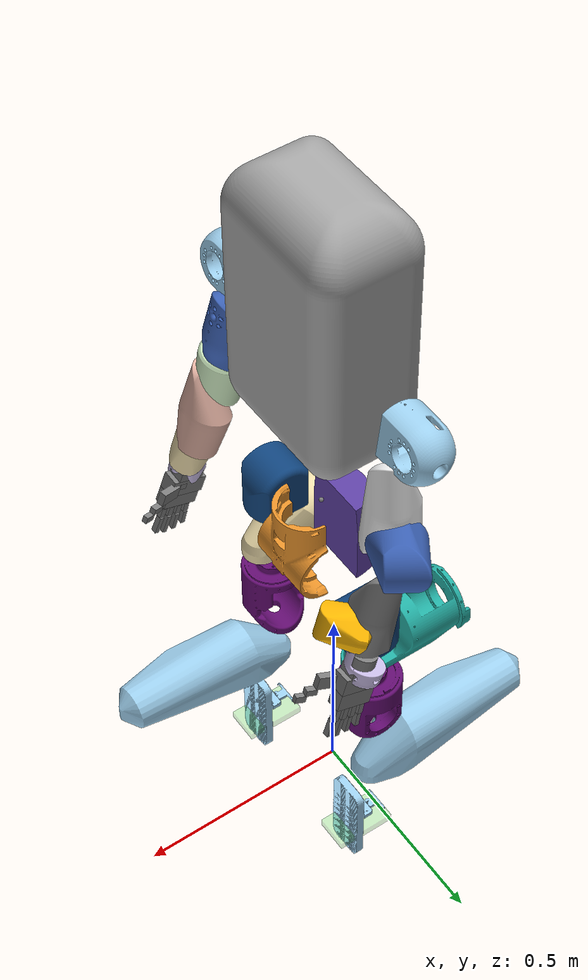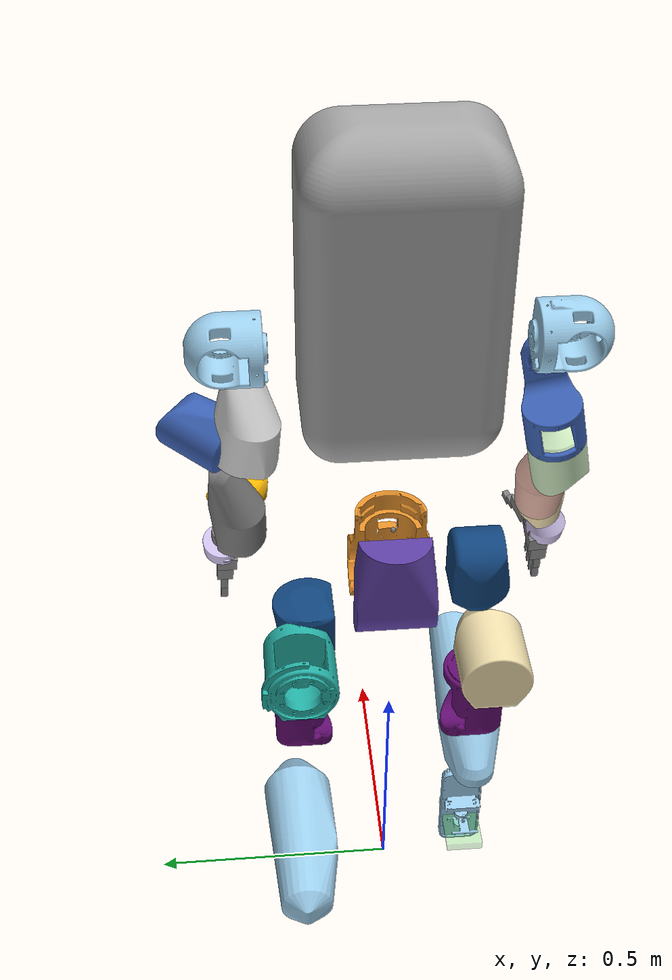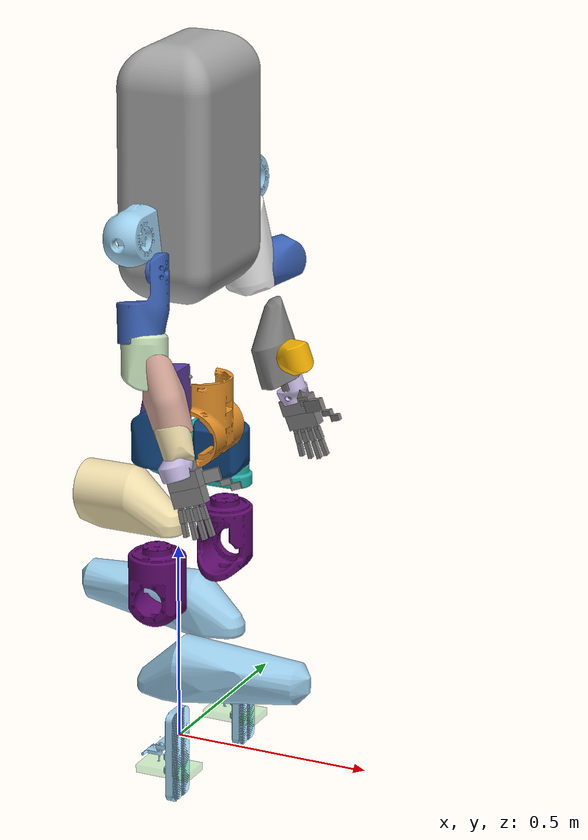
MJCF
<?xml version='1.0' encoding='utf-8'?>
<mujoco model="harambe_full_robot">
  <compiler angle="radian" />
  <asset>
    <mesh name="b_base" content_type="model/stl" file="/home/alex/Documents/GitHub/ldr-harambe-arms-sim2real/src/robot_description/full_robot_description/meshes/collision/b_base.stl" />
    <mesh name="f_base" content_type="model/stl" file="/home/alex/Documents/GitHub/ldr-harambe-arms-sim2real/src/robot_description/full_robot_description/meshes/visual/f_base.stl" />
    <mesh name="urdf_simplified_torso" content_type="model/stl" file="/home/alex/Documents/GitHub/ldr-harambe-arms-sim2real/src/robot_description/full_robot_description/meshes/collision/urdf_simplified_torso.stl" />
    <mesh name="head" content_type="model/stl" file="/home/alex/Documents/GitHub/ldr-harambe-arms-sim2real/src/robot_description/full_robot_description/meshes/visual/head.stl" />
    <mesh name="l_shoulder" content_type="model/stl" file="/home/alex/Documents/GitHub/ldr-harambe-arms-sim2real/src/robot_description/full_robot_description/meshes/visual/l_shoulder.stl" />
    <mesh name="urdf_l_upper_arm_simplified" content_type="model/stl" file="/home/alex/Documents/GitHub/ldr-harambe-arms-sim2real/src/robot_description/full_robot_description/meshes/collision/urdf_l_upper_arm_simplified.stl" />
    <mesh name="urdf_l_elbow_simplified" content_type="model/stl" file="/home/alex/Documents/GitHub/ldr-harambe-arms-sim2real/src/robot_description/full_robot_description/meshes/collision/urdf_l_elbow_simplified.stl" />
    <mesh name="urdf_l_upper_forearm_simplified" content_type="model/stl" file="/home/alex/Documents/GitHub/ldr-harambe-arms-sim2real/src/robot_description/full_robot_description/meshes/collision/urdf_l_upper_forearm_simplified.stl" />
    <mesh name="urdf_l_lower_forearm_simplified" content_type="model/stl" file="/home/alex/Documents/GitHub/ldr-harambe-arms-sim2real/src/robot_description/full_robot_description/meshes/collision/urdf_l_lower_forearm_simplified.stl" />
    <mesh name="l_wrist" content_type="model/stl" file="/home/alex/Documents/GitHub/ldr-harambe-arms-sim2real/src/robot_description/full_robot_description/meshes/visual/l_wrist.stl" />
    <mesh name="r_shoulder" content_type="model/stl" file="/home/alex/Documents/GitHub/ldr-harambe-arms-sim2real/src/robot_description/full_robot_description/meshes/visual/r_shoulder.stl" />
    <mesh name="r_upper_arm" content_type="model/stl" file="/home/alex/Documents/GitHub/ldr-harambe-arms-sim2real/src/robot_description/full_robot_description/meshes/visual/r_upper_arm.stl" />
    <mesh name="r_elbow" content_type="model/stl" file="/home/alex/Documents/GitHub/ldr-harambe-arms-sim2real/src/robot_description/full_robot_description/meshes/collision/r_elbow.stl" />
    <mesh name="r_upper_forearm" content_type="model/stl" file="/home/alex/Documents/GitHub/ldr-harambe-arms-sim2real/src/robot_description/full_robot_description/meshes/collision/r_upper_forearm.stl" />
    <mesh name="r_lower_forearm" content_type="model/stl" file="/home/alex/Documents/GitHub/ldr-harambe-arms-sim2real/src/robot_description/full_robot_description/meshes/collision/r_lower_forearm.stl" />
    <mesh name="r_wrist" content_type="model/stl" file="/home/alex/Documents/GitHub/ldr-harambe-arms-sim2real/src/robot_description/full_robot_description/meshes/collision/r_wrist.stl" />
    <mesh name="hip" content_type="model/stl" file="/home/alex/Documents/GitHub/ldr-harambe-arms-sim2real/src/robot_description/full_robot_description/meshes/collision/hip.stl" />
    <mesh name="l_upper_femur" content_type="model/stl" file="/home/alex/Documents/GitHub/ldr-harambe-arms-sim2real/src/robot_description/full_robot_description/meshes/visual/l_upper_femur.stl" />
    <mesh name="lower_femur" content_type="model/stl" file="/home/alex/Documents/GitHub/ldr-harambe-arms-sim2real/src/robot_description/full_robot_description/meshes/visual/lower_femur.stl" />
    <mesh name="urdf_l_tibia_assembly" content_type="model/stl" file="/home/alex/Documents/GitHub/ldr-harambe-arms-sim2real/src/robot_description/full_robot_description/meshes/collision/urdf_l_tibia_assembly.stl" />
    <mesh name="urdf_ankle_assembly" content_type="model/stl" file="/home/alex/Documents/GitHub/ldr-harambe-arms-sim2real/src/robot_description/full_robot_description/meshes/visual/urdf_ankle_assembly.stl" />
    <mesh name="urdf_foot_assembly" content_type="model/stl" file="/home/alex/Documents/GitHub/ldr-harambe-arms-sim2real/src/robot_description/full_robot_description/meshes/visual/urdf_foot_assembly.stl" />
    <mesh name="r_upper_femur" content_type="model/stl" file="/home/alex/Documents/GitHub/ldr-harambe-arms-sim2real/src/robot_description/full_robot_description/meshes/collision/r_upper_femur.stl" />
    <mesh name="urdf_r_tibia_assembly" content_type="model/stl" file="/home/alex/Documents/GitHub/ldr-harambe-arms-sim2real/src/robot_description/full_robot_description/meshes/collision/urdf_r_tibia_assembly.stl" />
    <mesh name="low_res_bno055_imu" content_type="model/stl" file="/home/alex/Documents/GitHub/ldr-harambe-arms-sim2real/src/robot_description/imu_description/meshes/low_res_bno055_imu.stl" />
  </asset>
  <worldbody>
    <body name="urdf_base" pos="0 0 1.24">
      <inertial pos="0.0334604 -0.000699269 -0.431702" mass="5.132" diaginertia="0.0288848 0.0213139 0.0155352" />
      <freejoint name="root" />
      <geom pos="-0.00271429 -0.000697952 -0.432504" quat="0.707105 0 0 -0.707108" type="mesh" rgba="0.368627 0.25098 0.643137 1" mesh="b_base" />
      <geom pos="0.070373 -0.000705351 -0.431099" quat="0.707105 0 0 -0.707108" type="mesh" rgba="0.909804 0.572549 0.164706 1" mesh="f_base" />
      <body name="urdf_simplified_torso" pos="0.0333787 -0.000698852 -0.300748">
        <inertial pos="0.00209319 -4.17161e-05 0.327223" quat="0.999959 0.000222179 0.00902524 -2.61918e-05" mass="5.90847" diaginertia="0.321445 0.295277 0.0774425" />
        <joint name="waist_yaw_joint_X8" pos="0 0 0" axis="0 0 1" range="-1.57 1.57" armature="0.01" damping="0.5" />
        <geom pos="0 0 0.26095" quat="0.707105 0 0 -0.707108" type="mesh" rgba="0.647059 0.647059 0.647059 1" mesh="urdf_simplified_torso" />
        <geom pos="4.03711e-05 -0.000382221 0.67095" quat="0.707105 0 0 -0.707108" type="mesh" rgba="0.737255 0.937255 0.917647 1" mesh="head" />
        <geom pos="0.0705 0 -0.17" quat="0 -0.707107 0 0.707107" type="mesh" rgba="0.2 0.2 0.2 1" mesh="low_res_bno055_imu" />
        <geom pos="0.0665 0 0.35" quat="0.707107 0 0.707107 0" type="mesh" rgba="0.2 0.2 0.2 1" mesh="low_res_bno055_imu" />
        <body name="urdf_l_shoulder_assembly" pos="0 0.1755 0.423977">
          <inertial pos="-0.00409836 0.0631966 -0.000544496" quat="0.697622 0.713265 -0.0648222 0.0193628" mass="1.246" diaginertia="0.00206597 0.0017112 0.00152169" />
          <joint name="left_shoulder_pitch_joint_X6" pos="0 0 0" axis="0 1 0" range="-3.02 1.69" armature="0.01" damping="0.5" />
          <geom pos="-0.00129022 0.0502746 -0.000165436" quat="0.705787 0.0431681 -0.0431683 -0.705789" type="mesh" rgba="0.615686 0.811765 0.929412 1" mesh="l_shoulder" />
          <body name="urdf_l_upper_arm_assembly" pos="0.0456571 0.07 0.00560599" quat="0.998135 0 -0.0610485 0">
            <inertial pos="-0.0354438 0.0213179 -0.103332" quat="0.973759 0.0936596 0.204078 0.0370533" mass="0.802" diaginertia="0.00211885 0.0020649 0.000832061" />
            <joint name="left_shoulder_roll_joint_X6" pos="0 0 0" axis="1 0 0" range="-0.21 2.93" armature="0.01" damping="0.5" />
            <geom pos="-0.0268697 0.0182146 -0.0914677" quat="0.918818 0.0965719 0.0399998 -0.380587" type="mesh" rgba="0.917647 0.917647 0.917647 1" mesh="urdf_l_upper_arm_simplified" />
            <body name="urdf_l_elbow_assembly" pos="-0.046 0.0343048 -0.161394" quat="0.994441 0.104521 0.0013329 -0.0126916">
              <inertial pos="-0.00454375 -0.00631726 -0.0710681" quat="0.887194 -0.0766275 0.0688607 0.449748" mass="1.109" diaginertia="0.00153484 0.00140612 0.00112093" />
              <joint name="left_shoulder_yaw_joint_X4" pos="0 0 0" axis="0 0 1" range="-1.75 2.97" armature="0.01" damping="0.5" />
              <geom pos="-0.00676793 -0.0102107 -0.075" quat="0.334487 0.622994 0.334483 -0.622992" type="mesh" rgba="0.231373 0.380392 0.705882 1" mesh="urdf_l_elbow_simplified" />
              <body name="urdf_l_upper_forearm_assembly" pos="0.019337 0.0291733 -0.075" quat="0.957432 -0.00275385 -0.00913906 -0.2885">
                <inertial pos="0.0267134 -0.0286559 -0.0999185" quat="0.973929 -0.195153 -0.115628 0.00283339" mass="0.707" diaginertia="0.00168233 0.00161132 0.000570063" />
                <joint name="left_elbow_pitch_joint_X6" pos="0 0 0" axis="0 1 0" range="-1.31 1.83" armature="0.01" damping="0.5" />
                <geom pos="0.0285993 -0.035 -0.115512" quat="0.701905 0.0855989 -0.0855992 -0.701908" type="mesh" rgba="0.498039 0.498039 0.498039 1" mesh="urdf_l_upper_forearm_simplified" />
                <body name="urdf_l_lower_forearm_assembly" pos="0.0391738 -0.035 -0.158223" quat="0.945344 -0.0369253 -0.115286 0.302772">
                  <inertial pos="-0.00311766 0.00307025 -0.0515634" quat="0.995785 -0.00558184 0.0757942 -0.0513421" mass="0.618" diaginertia="0.000632875 0.000617128 0.000444421" />
                  <joint name="left_wrist_yaw_joint_X4" pos="0 0 0" axis="0 0 1" range="-2.36 2.36" armature="0.01" damping="0.5" />
                  <geom pos="-0.00732538 0.00522865 -0.0615" quat="0.62868 -0.628682 -0.323668 0.323666" type="mesh" rgba="0.980392 0.713725 0.00392157 1" mesh="urdf_l_lower_forearm_simplified" />
                  <body name="urdf_l_wrist_assembly" pos="0.0219762 -0.0156859 -0.0615" quat="0.945019 -0.117917 0.0377661 -0.302668">
                    <inertial pos="-0.0350691 -0.00329837 -0.0492438" quat="0.583425 0.696515 -0.30547 0.284904" mass="0.28979" diaginertia="0.00242102 0.00231913 0.000455696" />
                    <joint name="left_wrist_roll_joint_X4" pos="0 0 0" axis="1 0 0" range="-1.57 1.57" armature="0.01" damping="0.5" />
                    <geom pos="-0.0219314 0.0106848 -0.0421315" quat="0.701664 0.087552 0.0875516 -0.701667" type="mesh" rgba="0.8 0.74902 0.913725 1" mesh="l_wrist" />
                    <geom size="0.028 0.0139" pos="-0.034 0.0183419 -0.073183" quat="-0.0566745 0.454209 0.882249 0.110086" type="cylinder" />
                    <geom size="0.01955 0.0101 0.0287" pos="-0.032141 0.0218129 -0.0974749" quat="0.281098 0.36125 0.546004 0.701685" type="box" />
                    <geom size="0.01955 0.02 0.0407" pos="-0.0321411 0.0292339 -0.126749" quat="0.281098 0.36125 0.546004 0.701685" type="box" />
                    <geom size="0.0161 0.02 0.0407" pos="-0.0340003 0.0415631 -0.164786" quat="0.281098 0.36125 0.546004 0.701685" type="box" />
                    <geom size="0.00625 0.00555 0.00445" pos="-0.0582213 0.0292636 -0.194623" quat="0.281098 0.36125 0.546004 0.701685" type="box" />
                    <geom size="0.00625 0.00555 0.00445" pos="-0.0426752 0.0400198 -0.191896" quat="0.281098 0.36125 0.546004 0.701685" type="box" />
                    <geom size="0.00625 0.00555 0.00445" pos="-0.0273734 0.0506071 -0.189212" quat="0.281098 0.36125 0.546004 0.701685" type="box" />
                    <geom size="0.00625 0.00555 0.00445" pos="-0.0117459 0.0614196 -0.186471" quat="0.281098 0.36125 0.546004 0.701685" type="box" />
                    <geom size="0.0075 0.006 0.007" pos="-0.00285156 0.0304218 -0.120155" quat="-0.117918 0.945019 0.302668 0.0377638" type="box" />
                    <geom size="0.025 0.015 0.008" pos="0.0226552 0.0452624 -0.127844" quat="0.598599 0.769278 0.13717 0.176278" type="box" />
                    <geom size="0.0125 0.007 0.007" pos="0.0516123 0.0644116 -0.147288" quat="0.598599 0.769278 0.13717 0.176278" type="box" />
                    <geom size="0.012 0.008 0.006" pos="0.0697528 0.0768567 -0.159769" quat="0.598599 0.769278 0.13717 0.176278" type="box" />
                    <geom size="0.007 0.016 0.006" pos="-0.0129662 0.0681228 -0.202032" quat="0.28736 0.356289 0.533675 0.711107" type="box" />
                    <geom size="0.007 0.021 0.005" pos="-0.0103677 0.0761462 -0.239203" quat="0.28736 0.356289 0.533675 0.711107" type="box" />
                    <geom size="0.007 0.016 0.006" pos="-0.0290904 0.0570573 -0.205218" quat="0.281098 0.36125 0.546004 0.701685" type="box" />
                    <geom size="0.007 0.023 0.005" pos="-0.0276829 0.0649848 -0.244516" quat="0.281098 0.36125 0.546004 0.701685" type="box" />
                    <geom size="0.007 0.016 0.006" pos="-0.0453378 0.0456873 -0.20756" quat="0.271546 0.368485 0.564185 0.687152" type="box" />
                    <geom size="0.007 0.021 0.005" pos="-0.0455508 0.0519894 -0.245153" quat="0.271546 0.368485 0.564185 0.687152" type="box" />
                    <geom size="0.007 0.016 0.006" pos="-0.0615406 0.0340908 -0.20888" quat="0.261807 0.375467 0.581979 0.672148" type="box" />
                    <geom size="0.007 0.017 0.005" pos="-0.0636102 0.0392832 -0.242489" quat="0.261807 0.375467 0.581979 0.672148" type="box" />
                  </body>
                </body>
              </body>
            </body>
          </body>
        </body>
        <body name="urdf_r_shoulder_assembly" pos="0 -0.1755 0.423977">
          <inertial pos="-0.0047018 -0.0660727 -0.000602814" quat="0.713437 0.697755 -0.0247317 0.0594384" mass="1.02" diaginertia="0.00132898 0.00114326 0.00104898" />
          <joint name="right_shoulder_pitch_joint_X6" pos="0 0 0" axis="0 1 0" range="-3.02 1.69" armature="0.01" damping="0.5" />
          <geom pos="-0.00128021 -0.0501448 -0.000164153" quat="0.705787 0.0431681 -0.0431683 -0.705789" type="mesh" rgba="0.615686 0.811765 0.929412 1" mesh="r_shoulder" />
          <body name="urdf_r_upper_arm_assembly" pos="0.0456571 -0.07 0.00560599" quat="0.998135 0 -0.0610485 0">
            <inertial pos="-0.0347331 -0.0216406 -0.101809" quat="0.973583 -0.102329 0.203 -0.0213396" mass="0.802" diaginertia="0.00209028 0.00204755 0.00081156" />
            <joint name="right_shoulder_roll_joint_X6" pos="0 0 0" axis="1 0 0" range="-2.93 0.21" armature="0.01" damping="0.5" />
            <geom pos="-0.025543 -0.0188228 -0.088553" quat="0.703232 -0.0739145 -0.0739142 -0.703234" type="mesh" rgba="0.231373 0.380392 0.705882 1" mesh="r_upper_arm" />
            <body name="urdf_r_elbow_assembly" pos="-0.046 -0.0353456 -0.166285" quat="0.994441 -0.104522 0.00133209 0.0126914">
              <inertial pos="-0.00464629 0.00706688 -0.0612736" quat="0.471332 0.0675355 -0.0316928 0.878795" mass="1.109" diaginertia="0.00152148 0.00139045 0.00110905" />
              <joint name="right_shoulder_yaw_joint_X4" pos="0 0 0" axis="0 0 1" range="-2.97 1.75" armature="0.01" damping="0.5" />
              <geom pos="0.000192865 -0.000269971 -0.0512953" quat="0.881046 0 0 -0.47303" type="mesh" rgba="0.796078 0.905882 0.745098 1" mesh="r_elbow" />
              <body name="urdf_r_upper_forearm_assembly" pos="0.0220994 -0.0333409 -0.065" quat="0.957433 0.0027535 -0.00913802 0.288497">
                <inertial pos="0.026678 0.0327896 -0.0982604" quat="0.974066 0.190904 -0.121054 -0.00984866" mass="0.707" diaginertia="0.00166966 0.00158973 0.000563186" />
                <joint name="right_elbow_pitch_joint_X6" pos="0 0 0" axis="0 1 0" range="-1.31 1.83" armature="0.01" damping="0.5" />
                <geom pos="0.0247718 0.0254856 -0.0806201" quat="0.701905 0.0856024 -0.0856027 -0.701907" type="mesh" rgba="0.890196 0.698039 0.639216 1" mesh="r_upper_forearm" />
                <body name="urdf_r_lower_forearm_assembly" pos="0.0403763 0.04 -0.163076" quat="0.945345 0.0369231 -0.115288 -0.302768">
                  <inertial pos="-0.00325453 -0.0023229 -0.046852" quat="0.94751 -0.0307144 0.0959044 0.303454" mass="0.618" diaginertia="0.000625145 0.000618602 0.000429937" />
                  <joint name="right_wrist_yaw_joint_X4" pos="0 0 0" axis="0 0 1" range="-2.36 2.36" armature="0.01" damping="0.5" />
                  <geom pos="0.00167509 0.00119555 -0.0333447" quat="0.889087 0 0 -0.457739" type="mesh" rgba="0.941176 0.87451 0.678431 1" mesh="r_lower_forearm" />
                  <body name="urdf_r_wrist_assembly" pos="0.0219763 0.0156857 -0.0565" quat="0.94502 0.117922 0.0377669 0.302662">
                    <inertial pos="-0.0192017 -0.0201323 -0.0432124" quat="0.457916 0.35909 -0.646025 0.493983" mass="0.34179" diaginertia="0.00352722 0.00344448 0.000569076" />
                    <joint name="right_wrist_roll_joint_X4" pos="0 0 0" axis="1 0 0" range="-1.57 1.57" armature="0.01" damping="0.5" />
                    <geom pos="-0.0219316 -0.0106854 -0.0421314" quat="0.701664 -0.0875555 -0.0875551 -0.701667" type="mesh" rgba="0.8 0.74902 0.913725 1" mesh="r_wrist" />
                    <geom size="0.028 0.0139" pos="-0.029 -0.0143421 -0.073183" quat="0.0566784 0.454214 -0.882246 0.110087" type="cylinder" />
                    <geom size="0.01955 0.0101 0.0287" pos="-0.0271408 -0.0178134 -0.0974748" quat="0.361255 0.281101 -0.701687 -0.545997" type="box" />
                    <geom size="0.01955 0.02 0.0407" pos="-0.0271408 -0.0252347 -0.126749" quat="0.361255 0.281101 -0.701687 -0.545997" type="box" />
                    <geom size="0.0161 0.02 0.0407" pos="-0.0289997 -0.0375645 -0.164785" quat="0.361255 0.281101 -0.701687 -0.545997" type="box" />
                    <geom size="0.00625 0.00555 0.00445" pos="-0.0532207 -0.0252657 -0.194622" quat="0.361255 0.281101 -0.701687 -0.545997" type="box" />
                    <geom size="0.00625 0.00555 0.00445" pos="-0.0376745 -0.0360217 -0.191896" quat="0.361255 0.281101 -0.701687 -0.545997" type="box" />
                    <geom size="0.00625 0.00555 0.00445" pos="-0.0223725 -0.0466087 -0.189212" quat="0.361255 0.281101 -0.701687 -0.545997" type="box" />
                    <geom size="0.00625 0.00555 0.00445" pos="-0.00674496 -0.057421 -0.186471" quat="0.361255 0.281101 -0.701687 -0.545997" type="box" />
                    <geom size="0.0075 0.006 0.007" pos="-0.00599054 -0.0207909 -0.121582" quat="-0.0377683 -0.302666 -0.945019 0.117924" type="box" />
                    <geom size="0.025 0.015 0.008" pos="0.0291137 -0.037775 -0.128367" quat="0.605412 -0.778043 0.102991 -0.13236" type="box" />
                    <geom size="0.0125 0.007 0.007" pos="0.0594459 -0.0536593 -0.148638" quat="0.605412 -0.778043 0.102991 -0.13236" type="box" />
                    <geom size="0.012 0.008 0.006" pos="0.0784888 -0.0640567 -0.161637" quat="0.605412 -0.778043 0.102991 -0.13236" type="box" />
                    <geom size="0.007 0.016 0.006" pos="-0.00796531 -0.0641243 -0.202031" quat="0.287361 -0.356296 0.533672 -0.711106" type="box" />
                    <geom size="0.007 0.021 0.005" pos="-0.00536697 -0.0721479 -0.239202" quat="0.287361 -0.356296 0.533672 -0.711106" type="box" />
                    <geom size="0.007 0.016 0.006" pos="-0.0240895 -0.0530591 -0.205217" quat="0.2811 -0.361256 0.545999 -0.701685" type="box" />
                    <geom size="0.007 0.023 0.005" pos="-0.022682 -0.060987 -0.244515" quat="0.2811 -0.361256 0.545999 -0.701685" type="box" />
                    <geom size="0.007 0.016 0.006" pos="-0.0403373 -0.0416891 -0.20756" quat="-0.271542 0.368494 -0.564189 0.687145" type="box" />
                    <geom size="0.007 0.021 0.005" pos="-0.0405511 -0.047991 -0.245153" quat="-0.271542 0.368494 -0.564189 0.687145" type="box" />
                    <geom size="0.007 0.016 0.006" pos="-0.0565396 -0.0300933 -0.20888" quat="-0.261815 0.375468 -0.581963 0.672158" type="box" />
                    <geom size="0.007 0.017 0.005" pos="-0.0586083 -0.0352869 -0.242489" quat="-0.261815 0.375468 -0.581963 0.672158" type="box" />
                  </body>
                </body>
              </body>
            </body>
          </body>
        </body>
        <site name="Default_site" pos="0 0 0" size="0.005" />
      </body>
      <body name="urdf_hip_assembly" pos="0.0333787 0.111301 -0.467748">
        <inertial pos="-0.00420762 0.0689982 -6.23945e-06" quat="0.706157 0.707882 0.0110776 0.0110854" mass="1.73" diaginertia="0.00302373 0.00263533 0.00228673" />
        <joint name="left_hip_pitch_joint_X8" pos="0 0 0" axis="0 1 0" range="-2.53 1.57" armature="0.01" damping="10.0" ref="-0.15" />
        <geom pos="0.00253653 0.0520203 -3.27638e-05" quat="0.707105 0 0 -0.707108" type="mesh" rgba="0.0627451 0.266667 0.490196 1" mesh="hip" />
        <body name="urdf_l_upper_femur_assembly" pos="0.055 0.073 0">
          <inertial pos="-0.0457109 0.000405477 -0.147969" quat="0.812419 0.104926 0.172379 0.547038" mass="1.912" diaginertia="0.00558228 0.00552081 0.00296645" />
          <joint name="left_hip_roll_joint_X8" pos="0 0 0" axis="1 0 0" range="-0.35 3.14" armature="0.01" damping="10.0" />
          <geom pos="-0.0257799 0.00151581 -0.111785" quat="0.707105 0 0 -0.707108" type="mesh" rgba="0.141176 0.694118 0.65098 1" mesh="l_upper_femur" />
          <body name="urdf_lower_femur_assembly" pos="-0.053 -7.97086e-07 -0.217">
            <inertial pos="-1.0389e-08 -0.00357383 -0.103307" quat="0.70587 -0.0418434 0.0418548 0.705865" mass="1.817" diaginertia="0.00424172 0.00383469 0.00256196" />
            <joint name="left_hip_yaw_joint_X8" pos="0 0 0" axis="0 0 1" range="-1.57 1.57" armature="0.01" damping="10.0" />
            <geom pos="5.752e-09 0.00389134 -0.070766" quat="0.707105 0 0 -0.707108" type="mesh" rgba="0.380392 0.0470588 0.435294 1" mesh="lower_femur" />
            <body name="urdf_l_tibia_assembly" pos="0 0.055 -0.113">
              <inertial pos="0.00463897 -0.0449177 -0.190721" quat="0.996875 -0.0712688 -0.0114929 0.032074" mass="6.45981" diaginertia="0.0786412 0.0774859 0.0140293" />
              <joint name="left_knee_joint_X8" pos="0 0 0" axis="0 1 0" range="-0.17 1.57" armature="0.01" damping="10.0" ref="0.3" />
              <geom pos="0.000678037 -0.0431371 -0.186264" quat="0.707105 0 0 -0.707108" type="mesh" rgba="0.615686 0.811765 0.929412 1" mesh="urdf_l_tibia_assembly" />
              <body name="urdf_ankle_assembly" pos="-1.45092e-06 -0.051 -0.395">
                <inertial pos="-4.60715e-08 -0.004 -0.0125426" quat="0.707107 1.29867e-06 1.29867e-06 0.707107" mass="0.0818219" diaginertia="2.15245e-05 1.69449e-05 1.25404e-05" />
                <joint name="left_ankle_pitch_joint_X4" pos="0 0 0" axis="0 1 0" range="-0.79 0.79" armature="0.01" damping="5.0" ref="-0.15" />
                <geom pos="-4.60715e-08 -0.004 -0.0125426" quat="0.707105 0 0 -0.707108" type="mesh" rgba="0.615686 0.811765 0.929412 1" mesh="urdf_ankle_assembly" />
                <body name="urdf_foot_assembly" pos="-0.0120001 -0.004 -0.028">
                  <inertial pos="0.0427639 9.73e-10 -0.0209668" quat="0 0.706024 0 0.708188" mass="0.504" diaginertia="0.00229245 0.00202397 0.00036168" />
                  <joint name="left_ankle_roll_joint_X4" pos="0 0 0" axis="1 0 0" range="-0.79 0.79" armature="0.01" damping="5.0" />
                  <geom pos="0.0427639 0 -0.0209668" quat="0.707105 0 0 -0.707108" type="mesh" rgba="0.615686 0.811765 0.929412 1" mesh="urdf_foot_assembly" />
                  <site name="LeftFoot_site" pos="0.04 0 -0.02" size="0.005" />
                  <geom name="LeftFootBox" type="box" size="0.07 0.04 0.01" pos="0.04 0 -0.02" friction="1.0 0.1 0.01" condim="3" contype="1" conaffinity="1" rgba="0.3 0.8 0.3 0.3" />
                </body>
              </body>
            </body>
          </body>
        </body>
      </body>
      <body name="urdf_hip_assembly_2" pos="0.0333787 -0.107699 -0.467748">
        <inertial pos="-0.00420762 -0.0739982 6.23945e-06" quat="0.706157 0.707882 -0.0110776 -0.0110854" mass="1.73" diaginertia="0.00302373 0.00263533 0.00228673" />
        <joint name="right_hip_pitch_joint_X8" pos="0 0 0" axis="0 1 0" range="-2.53 1.57" armature="0.01" damping="10.0" ref="-0.15" />
        <geom pos="0.00253653 -0.0570203 3.27638e-05" quat="9.38184e-07 -0.707105 -0.707108 9.38187e-07" type="mesh" rgba="0.0627451 0.266667 0.490196 1" mesh="hip" />
        <body name="urdf_r_upper_femur_assemby" pos="0.055 -0.078 0">
          <inertial pos="-0.0457092 -0.000405162 -0.147963" quat="0.546379 0.172424 0.104782 0.812872" mass="1.912" diaginertia="0.00558398 0.00552262 0.00296637" />
          <joint name="right_hip_roll_joint_X8" pos="0 0 0" axis="1 0 0" range="-3.14 0.35" armature="0.01" damping="10.0" />
          <geom pos="-0.0257733 -0.00151464 -0.111761" quat="0.707105 0 0 -0.707108" type="mesh" rgba="0.941176 0.87451 0.678431 1" mesh="r_upper_femur" />
          <body name="urdf_lower_femur_assembly_2" pos="-0.053 7.97086e-07 -0.217">
            <inertial pos="1.0389e-08 0.00357383 -0.103307" quat="0.70587 0.0418434 -0.0418548 0.705865" mass="1.817" diaginertia="0.00424172 0.00383469 0.00256196" />
            <joint name="right_hip_yaw_joint_X8" pos="0 0 0" axis="0 0 1" range="-1.57 1.57" armature="0.01" damping="10.0" />
            <geom pos="-5.752e-09 -0.00389134 -0.070766" quat="0.707105 0 0 0.707108" type="mesh" rgba="0.380392 0.0470588 0.435294 1" mesh="lower_femur" />
            <body name="urdf_r_tibia_assembly" pos="0 -0.055 -0.113">
              <inertial pos="0.00463902 0.0449175 -0.190727" quat="0.996881 0.0712617 -0.0115278 -0.0318828" mass="6.45984" diaginertia="0.0786493 0.0774942 0.0140292" />
              <joint name="right_knee_joint_X8" pos="0 0 0" axis="0 1 0" range="-0.17 1.57" armature="0.01" damping="10.0" ref="0.3" />
              <geom pos="0.000678616 0.0431372 -0.186264" quat="0.707105 0 0 -0.707108" type="mesh" rgba="0.615686 0.811765 0.929412 1" mesh="urdf_r_tibia_assembly" />
              <body name="urdf_ankle_assembly_2" pos="-4.02748e-07 0.059 -0.395">
                <inertial pos="-1.27886e-08 -0.004 -0.0125426" quat="0.707107 0 0 0.707107" mass="0.0818219" diaginertia="2.15245e-05 1.69449e-05 1.25404e-05" />
                <joint name="right_ankle_pitch_joint_X4" pos="0 0 0" axis="0 1 0" range="-0.79 0.79" armature="0.01" damping="5.0" ref="-0.15" />
                <geom pos="-1.27886e-08 -0.004 -0.0125426" quat="0.707105 0 0 -0.707108" type="mesh" rgba="0.615686 0.811765 0.929412 1" mesh="urdf_ankle_assembly" />
                <body name="urdf_foot_assembly_2" pos="-0.012 -0.004 -0.028">
                  <inertial pos="0.0427639 1.55004e-07 -0.0209668" quat="-2.62236e-06 0.706024 -2.61435e-06 0.708188" mass="0.504" diaginertia="0.00229245 0.00202397 0.00036168" />
                  <joint name="right_ankle_roll_joint_X4" pos="0 0 0" axis="1 0 0" range="-0.79 0.79" armature="0.01" damping="5.0" />
                  <geom pos="0.0427639 1.53975e-07 -0.0209668" quat="0.707105 0 0 -0.707108" type="mesh" rgba="0.615686 0.811765 0.929412 1" mesh="urdf_foot_assembly" />
                  <site name="RightFoot_site" pos="0.04 0 -0.02" size="0.005" />
                  <geom name="RightFootBox" type="box" size="0.07 0.04 0.01" pos="0.04 0 -0.02" friction="1.0 0.1 0.01" condim="3" contype="1" conaffinity="1" rgba="0.3 0.8 0.3 0.3" />
                </body>
              </body>
            </body>
          </body>
        </body>
      </body>
    </body>
  </worldbody>
  <contact>
    <exclude body1="urdf_ankle_assembly" body2="urdf_ankle_assembly_2" />
    <exclude body1="urdf_ankle_assembly" body2="urdf_base" />
    <exclude body1="urdf_ankle_assembly" body2="urdf_foot_assembly" />
    <exclude body1="urdf_ankle_assembly" body2="urdf_foot_assembly_2" />
    <exclude body1="urdf_ankle_assembly" body2="urdf_hip_assembly" />
    <exclude body1="urdf_ankle_assembly" body2="urdf_hip_assembly_2" />
    <exclude body1="urdf_ankle_assembly" body2="urdf_l_elbow_assembly" />
    <exclude body1="urdf_ankle_assembly" body2="urdf_l_lower_forearm_assembly" />
    <exclude body1="urdf_ankle_assembly" body2="urdf_l_shoulder_assembly" />
    <exclude body1="urdf_ankle_assembly" body2="urdf_l_tibia_assembly" />
    <exclude body1="urdf_ankle_assembly" body2="urdf_l_upper_arm_assembly" />
    <exclude body1="urdf_ankle_assembly" body2="urdf_l_upper_femur_assembly" />
    <exclude body1="urdf_ankle_assembly" body2="urdf_l_upper_forearm_assembly" />
    <exclude body1="urdf_ankle_assembly" body2="urdf_l_wrist_assembly" />
    <exclude body1="urdf_ankle_assembly" body2="urdf_lower_femur_assembly" />
    <exclude body1="urdf_ankle_assembly" body2="urdf_lower_femur_assembly_2" />
    <exclude body1="urdf_ankle_assembly" body2="urdf_r_elbow_assembly" />
    <exclude body1="urdf_ankle_assembly" body2="urdf_r_lower_forearm_assembly" />
    <exclude body1="urdf_ankle_assembly" body2="urdf_r_shoulder_assembly" />
    <exclude body1="urdf_ankle_assembly" body2="urdf_r_tibia_assembly" />
    <exclude body1="urdf_ankle_assembly" body2="urdf_r_upper_arm_assembly" />
    <exclude body1="urdf_ankle_assembly" body2="urdf_r_upper_femur_assemby" />
    <exclude body1="urdf_ankle_assembly" body2="urdf_r_upper_forearm_assembly" />
    <exclude body1="urdf_ankle_assembly" body2="urdf_r_wrist_assembly" />
    <exclude body1="urdf_ankle_assembly" body2="urdf_simplified_torso" />
    <exclude body1="urdf_ankle_assembly_2" body2="urdf_base" />
    <exclude body1="urdf_ankle_assembly_2" body2="urdf_foot_assembly" />
    <exclude body1="urdf_ankle_assembly_2" body2="urdf_foot_assembly_2" />
    <exclude body1="urdf_ankle_assembly_2" body2="urdf_hip_assembly" />
    <exclude body1="urdf_ankle_assembly_2" body2="urdf_hip_assembly_2" />
    <exclude body1="urdf_ankle_assembly_2" body2="urdf_l_elbow_assembly" />
    <exclude body1="urdf_ankle_assembly_2" body2="urdf_l_lower_forearm_assembly" />
    <exclude body1="urdf_ankle_assembly_2" body2="urdf_l_shoulder_assembly" />
    <exclude body1="urdf_ankle_assembly_2" body2="urdf_l_tibia_assembly" />
    <exclude body1="urdf_ankle_assembly_2" body2="urdf_l_upper_arm_assembly" />
    <exclude body1="urdf_ankle_assembly_2" body2="urdf_l_upper_femur_assembly" />
    <exclude body1="urdf_ankle_assembly_2" body2="urdf_l_upper_forearm_assembly" />
    <exclude body1="urdf_ankle_assembly_2" body2="urdf_l_wrist_assembly" />
    <exclude body1="urdf_ankle_assembly_2" body2="urdf_lower_femur_assembly" />
    <exclude body1="urdf_ankle_assembly_2" body2="urdf_lower_femur_assembly_2" />
    <exclude body1="urdf_ankle_assembly_2" body2="urdf_r_elbow_assembly" />
    <exclude body1="urdf_ankle_assembly_2" body2="urdf_r_lower_forearm_assembly" />
    <exclude body1="urdf_ankle_assembly_2" body2="urdf_r_shoulder_assembly" />
    <exclude body1="urdf_ankle_assembly_2" body2="urdf_r_tibia_assembly" />
    <exclude body1="urdf_ankle_assembly_2" body2="urdf_r_upper_arm_assembly" />
    <exclude body1="urdf_ankle_assembly_2" body2="urdf_r_upper_femur_assemby" />
    <exclude body1="urdf_ankle_assembly_2" body2="urdf_r_upper_forearm_assembly" />
    <exclude body1="urdf_ankle_assembly_2" body2="urdf_r_wrist_assembly" />
    <exclude body1="urdf_ankle_assembly_2" body2="urdf_simplified_torso" />
    <exclude body1="urdf_base" body2="urdf_foot_assembly" />
    <exclude body1="urdf_base" body2="urdf_foot_assembly_2" />
    <exclude body1="urdf_base" body2="urdf_hip_assembly" />
    <exclude body1="urdf_base" body2="urdf_hip_assembly_2" />
    <exclude body1="urdf_base" body2="urdf_l_elbow_assembly" />
    <exclude body1="urdf_base" body2="urdf_l_lower_forearm_assembly" />
    <exclude body1="urdf_base" body2="urdf_l_shoulder_assembly" />
    <exclude body1="urdf_base" body2="urdf_l_tibia_assembly" />
    <exclude body1="urdf_base" body2="urdf_l_upper_arm_assembly" />
    <exclude body1="urdf_base" body2="urdf_l_upper_femur_assembly" />
    <exclude body1="urdf_base" body2="urdf_l_upper_forearm_assembly" />
    <exclude body1="urdf_base" body2="urdf_l_wrist_assembly" />
    <exclude body1="urdf_base" body2="urdf_lower_femur_assembly" />
    <exclude body1="urdf_base" body2="urdf_lower_femur_assembly_2" />
    <exclude body1="urdf_base" body2="urdf_r_elbow_assembly" />
    <exclude body1="urdf_base" body2="urdf_r_lower_forearm_assembly" />
    <exclude body1="urdf_base" body2="urdf_r_shoulder_assembly" />
    <exclude body1="urdf_base" body2="urdf_r_tibia_assembly" />
    <exclude body1="urdf_base" body2="urdf_r_upper_arm_assembly" />
    <exclude body1="urdf_base" body2="urdf_r_upper_femur_assemby" />
    <exclude body1="urdf_base" body2="urdf_r_upper_forearm_assembly" />
    <exclude body1="urdf_base" body2="urdf_r_wrist_assembly" />
    <exclude body1="urdf_base" body2="urdf_simplified_torso" />
    <exclude body1="urdf_foot_assembly" body2="urdf_foot_assembly_2" />
    <exclude body1="urdf_foot_assembly" body2="urdf_hip_assembly" />
    <exclude body1="urdf_foot_assembly" body2="urdf_hip_assembly_2" />
    <exclude body1="urdf_foot_assembly" body2="urdf_l_elbow_assembly" />
    <exclude body1="urdf_foot_assembly" body2="urdf_l_lower_forearm_assembly" />
    <exclude body1="urdf_foot_assembly" body2="urdf_l_shoulder_assembly" />
    <exclude body1="urdf_foot_assembly" body2="urdf_l_tibia_assembly" />
    <exclude body1="urdf_foot_assembly" body2="urdf_l_upper_arm_assembly" />
    <exclude body1="urdf_foot_assembly" body2="urdf_l_upper_femur_assembly" />
    <exclude body1="urdf_foot_assembly" body2="urdf_l_upper_forearm_assembly" />
    <exclude body1="urdf_foot_assembly" body2="urdf_l_wrist_assembly" />
    <exclude body1="urdf_foot_assembly" body2="urdf_lower_femur_assembly" />
    <exclude body1="urdf_foot_assembly" body2="urdf_lower_femur_assembly_2" />
    <exclude body1="urdf_foot_assembly" body2="urdf_r_elbow_assembly" />
    <exclude body1="urdf_foot_assembly" body2="urdf_r_lower_forearm_assembly" />
    <exclude body1="urdf_foot_assembly" body2="urdf_r_shoulder_assembly" />
    <exclude body1="urdf_foot_assembly" body2="urdf_r_tibia_assembly" />
    <exclude body1="urdf_foot_assembly" body2="urdf_r_upper_arm_assembly" />
    <exclude body1="urdf_foot_assembly" body2="urdf_r_upper_femur_assemby" />
    <exclude body1="urdf_foot_assembly" body2="urdf_r_upper_forearm_assembly" />
    <exclude body1="urdf_foot_assembly" body2="urdf_r_wrist_assembly" />
    <exclude body1="urdf_foot_assembly" body2="urdf_simplified_torso" />
    <exclude body1="urdf_foot_assembly_2" body2="urdf_hip_assembly" />
    <exclude body1="urdf_foot_assembly_2" body2="urdf_hip_assembly_2" />
    <exclude body1="urdf_foot_assembly_2" body2="urdf_l_elbow_assembly" />
    <exclude body1="urdf_foot_assembly_2" body2="urdf_l_lower_forearm_assembly" />
    <exclude body1="urdf_foot_assembly_2" body2="urdf_l_shoulder_assembly" />
    <exclude body1="urdf_foot_assembly_2" body2="urdf_l_tibia_assembly" />
    <exclude body1="urdf_foot_assembly_2" body2="urdf_l_upper_arm_assembly" />
    <exclude body1="urdf_foot_assembly_2" body2="urdf_l_upper_femur_assembly" />
    <exclude body1="urdf_foot_assembly_2" body2="urdf_l_upper_forearm_assembly" />
    <exclude body1="urdf_foot_assembly_2" body2="urdf_l_wrist_assembly" />
    <exclude body1="urdf_foot_assembly_2" body2="urdf_lower_femur_assembly" />
    <exclude body1="urdf_foot_assembly_2" body2="urdf_lower_femur_assembly_2" />
    <exclude body1="urdf_foot_assembly_2" body2="urdf_r_elbow_assembly" />
    <exclude body1="urdf_foot_assembly_2" body2="urdf_r_lower_forearm_assembly" />
    <exclude body1="urdf_foot_assembly_2" body2="urdf_r_shoulder_assembly" />
    <exclude body1="urdf_foot_assembly_2" body2="urdf_r_tibia_assembly" />
    <exclude body1="urdf_foot_assembly_2" body2="urdf_r_upper_arm_assembly" />
    <exclude body1="urdf_foot_assembly_2" body2="urdf_r_upper_femur_assemby" />
    <exclude body1="urdf_foot_assembly_2" body2="urdf_r_upper_forearm_assembly" />
    <exclude body1="urdf_foot_assembly_2" body2="urdf_r_wrist_assembly" />
    <exclude body1="urdf_foot_assembly_2" body2="urdf_simplified_torso" />
    <exclude body1="urdf_hip_assembly" body2="urdf_hip_assembly_2" />
    <exclude body1="urdf_hip_assembly" body2="urdf_l_elbow_assembly" />
    <exclude body1="urdf_hip_assembly" body2="urdf_l_lower_forearm_assembly" />
    <exclude body1="urdf_hip_assembly" body2="urdf_l_shoulder_assembly" />
    <exclude body1="urdf_hip_assembly" body2="urdf_l_tibia_assembly" />
    <exclude body1="urdf_hip_assembly" body2="urdf_l_upper_arm_assembly" />
    <exclude body1="urdf_hip_assembly" body2="urdf_l_upper_femur_assembly" />
    <exclude body1="urdf_hip_assembly" body2="urdf_l_upper_forearm_assembly" />
    <exclude body1="urdf_hip_assembly" body2="urdf_l_wrist_assembly" />
    <exclude body1="urdf_hip_assembly" body2="urdf_lower_femur_assembly" />
    <exclude body1="urdf_hip_assembly" body2="urdf_lower_femur_assembly_2" />
    <exclude body1="urdf_hip_assembly" body2="urdf_r_elbow_assembly" />
    <exclude body1="urdf_hip_assembly" body2="urdf_r_lower_forearm_assembly" />
    <exclude body1="urdf_hip_assembly" body2="urdf_r_shoulder_assembly" />
    <exclude body1="urdf_hip_assembly" body2="urdf_r_tibia_assembly" />
    <exclude body1="urdf_hip_assembly" body2="urdf_r_upper_arm_assembly" />
    <exclude body1="urdf_hip_assembly" body2="urdf_r_upper_femur_assemby" />
    <exclude body1="urdf_hip_assembly" body2="urdf_r_upper_forearm_assembly" />
    <exclude body1="urdf_hip_assembly" body2="urdf_r_wrist_assembly" />
    <exclude body1="urdf_hip_assembly" body2="urdf_simplified_torso" />
    <exclude body1="urdf_hip_assembly_2" body2="urdf_l_elbow_assembly" />
    <exclude body1="urdf_hip_assembly_2" body2="urdf_l_lower_forearm_assembly" />
    <exclude body1="urdf_hip_assembly_2" body2="urdf_l_shoulder_assembly" />
    <exclude body1="urdf_hip_assembly_2" body2="urdf_l_tibia_assembly" />
    <exclude body1="urdf_hip_assembly_2" body2="urdf_l_upper_arm_assembly" />
    <exclude body1="urdf_hip_assembly_2" body2="urdf_l_upper_femur_assembly" />
    <exclude body1="urdf_hip_assembly_2" body2="urdf_l_upper_forearm_assembly" />
    <exclude body1="urdf_hip_assembly_2" body2="urdf_l_wrist_assembly" />
    <exclude body1="urdf_hip_assembly_2" body2="urdf_lower_femur_assembly" />
    <exclude body1="urdf_hip_assembly_2" body2="urdf_lower_femur_assembly_2" />
    <exclude body1="urdf_hip_assembly_2" body2="urdf_r_elbow_assembly" />
    <exclude body1="urdf_hip_assembly_2" body2="urdf_r_lower_forearm_assembly" />
    <exclude body1="urdf_hip_assembly_2" body2="urdf_r_shoulder_assembly" />
    <exclude body1="urdf_hip_assembly_2" body2="urdf_r_tibia_assembly" />
    <exclude body1="urdf_hip_assembly_2" body2="urdf_r_upper_arm_assembly" />
    <exclude body1="urdf_hip_assembly_2" body2="urdf_r_upper_femur_assemby" />
    <exclude body1="urdf_hip_assembly_2" body2="urdf_r_upper_forearm_assembly" />
    <exclude body1="urdf_hip_assembly_2" body2="urdf_r_wrist_assembly" />
    <exclude body1="urdf_hip_assembly_2" body2="urdf_simplified_torso" />
    <exclude body1="urdf_l_elbow_assembly" body2="urdf_l_lower_forearm_assembly" />
    <exclude body1="urdf_l_elbow_assembly" body2="urdf_l_shoulder_assembly" />
    <exclude body1="urdf_l_elbow_assembly" body2="urdf_l_tibia_assembly" />
    <exclude body1="urdf_l_elbow_assembly" body2="urdf_l_upper_arm_assembly" />
    <exclude body1="urdf_l_elbow_assembly" body2="urdf_l_upper_femur_assembly" />
    <exclude body1="urdf_l_elbow_assembly" body2="urdf_l_upper_forearm_assembly" />
    <exclude body1="urdf_l_elbow_assembly" body2="urdf_l_wrist_assembly" />
    <exclude body1="urdf_l_elbow_assembly" body2="urdf_lower_femur_assembly" />
    <exclude body1="urdf_l_elbow_assembly" body2="urdf_lower_femur_assembly_2" />
    <exclude body1="urdf_l_elbow_assembly" body2="urdf_r_elbow_assembly" />
    <exclude body1="urdf_l_elbow_assembly" body2="urdf_r_lower_forearm_assembly" />
    <exclude body1="urdf_l_elbow_assembly" body2="urdf_r_shoulder_assembly" />
    <exclude body1="urdf_l_elbow_assembly" body2="urdf_r_tibia_assembly" />
    <exclude body1="urdf_l_elbow_assembly" body2="urdf_r_upper_arm_assembly" />
    <exclude body1="urdf_l_elbow_assembly" body2="urdf_r_upper_femur_assemby" />
    <exclude body1="urdf_l_elbow_assembly" body2="urdf_r_upper_forearm_assembly" />
    <exclude body1="urdf_l_elbow_assembly" body2="urdf_r_wrist_assembly" />
    <exclude body1="urdf_l_elbow_assembly" body2="urdf_simplified_torso" />
    <exclude body1="urdf_l_lower_forearm_assembly" body2="urdf_l_shoulder_assembly" />
    <exclude body1="urdf_l_lower_forearm_assembly" body2="urdf_l_tibia_assembly" />
    <exclude body1="urdf_l_lower_forearm_assembly" body2="urdf_l_upper_arm_assembly" />
    <exclude body1="urdf_l_lower_forearm_assembly" body2="urdf_l_upper_femur_assembly" />
    <exclude body1="urdf_l_lower_forearm_assembly" body2="urdf_l_upper_forearm_assembly" />
    <exclude body1="urdf_l_lower_forearm_assembly" body2="urdf_l_wrist_assembly" />
    <exclude body1="urdf_l_lower_forearm_assembly" body2="urdf_lower_femur_assembly" />
    <exclude body1="urdf_l_lower_forearm_assembly" body2="urdf_lower_femur_assembly_2" />
    <exclude body1="urdf_l_lower_forearm_assembly" body2="urdf_r_elbow_assembly" />
    <exclude body1="urdf_l_lower_forearm_assembly" body2="urdf_r_lower_forearm_assembly" />
    <exclude body1="urdf_l_lower_forearm_assembly" body2="urdf_r_shoulder_assembly" />
    <exclude body1="urdf_l_lower_forearm_assembly" body2="urdf_r_tibia_assembly" />
    <exclude body1="urdf_l_lower_forearm_assembly" body2="urdf_r_upper_arm_assembly" />
    <exclude body1="urdf_l_lower_forearm_assembly" body2="urdf_r_upper_femur_assemby" />
    <exclude body1="urdf_l_lower_forearm_assembly" body2="urdf_r_upper_forearm_assembly" />
    <exclude body1="urdf_l_lower_forearm_assembly" body2="urdf_r_wrist_assembly" />
    <exclude body1="urdf_l_lower_forearm_assembly" body2="urdf_simplified_torso" />
    <exclude body1="urdf_l_shoulder_assembly" body2="urdf_l_tibia_assembly" />
    <exclude body1="urdf_l_shoulder_assembly" body2="urdf_l_upper_arm_assembly" />
    <exclude body1="urdf_l_shoulder_assembly" body2="urdf_l_upper_femur_assembly" />
    <exclude body1="urdf_l_shoulder_assembly" body2="urdf_l_upper_forearm_assembly" />
    <exclude body1="urdf_l_shoulder_assembly" body2="urdf_l_wrist_assembly" />
    <exclude body1="urdf_l_shoulder_assembly" body2="urdf_lower_femur_assembly" />
    <exclude body1="urdf_l_shoulder_assembly" body2="urdf_lower_femur_assembly_2" />
    <exclude body1="urdf_l_shoulder_assembly" body2="urdf_r_elbow_assembly" />
    <exclude body1="urdf_l_shoulder_assembly" body2="urdf_r_lower_forearm_assembly" />
    <exclude body1="urdf_l_shoulder_assembly" body2="urdf_r_shoulder_assembly" />
    <exclude body1="urdf_l_shoulder_assembly" body2="urdf_r_tibia_assembly" />
    <exclude body1="urdf_l_shoulder_assembly" body2="urdf_r_upper_arm_assembly" />
    <exclude body1="urdf_l_shoulder_assembly" body2="urdf_r_upper_femur_assemby" />
    <exclude body1="urdf_l_shoulder_assembly" body2="urdf_r_upper_forearm_assembly" />
    <exclude body1="urdf_l_shoulder_assembly" body2="urdf_r_wrist_assembly" />
    <exclude body1="urdf_l_shoulder_assembly" body2="urdf_simplified_torso" />
    <exclude body1="urdf_l_tibia_assembly" body2="urdf_l_upper_arm_assembly" />
    <exclude body1="urdf_l_tibia_assembly" body2="urdf_l_upper_femur_assembly" />
    <exclude body1="urdf_l_tibia_assembly" body2="urdf_l_upper_forearm_assembly" />
    <exclude body1="urdf_l_tibia_assembly" body2="urdf_l_wrist_assembly" />
    <exclude body1="urdf_l_tibia_assembly" body2="urdf_lower_femur_assembly" />
    <exclude body1="urdf_l_tibia_assembly" body2="urdf_lower_femur_assembly_2" />
    <exclude body1="urdf_l_tibia_assembly" body2="urdf_r_elbow_assembly" />
    <exclude body1="urdf_l_tibia_assembly" body2="urdf_r_lower_forearm_assembly" />
    <exclude body1="urdf_l_tibia_assembly" body2="urdf_r_shoulder_assembly" />
    <exclude body1="urdf_l_tibia_assembly" body2="urdf_r_tibia_assembly" />
    <exclude body1="urdf_l_tibia_assembly" body2="urdf_r_upper_arm_assembly" />
    <exclude body1="urdf_l_tibia_assembly" body2="urdf_r_upper_femur_assemby" />
    <exclude body1="urdf_l_tibia_assembly" body2="urdf_r_upper_forearm_assembly" />
    <exclude body1="urdf_l_tibia_assembly" body2="urdf_r_wrist_assembly" />
    <exclude body1="urdf_l_tibia_assembly" body2="urdf_simplified_torso" />
    <exclude body1="urdf_l_upper_arm_assembly" body2="urdf_l_upper_femur_assembly" />
    <exclude body1="urdf_l_upper_arm_assembly" body2="urdf_l_upper_forearm_assembly" />
    <exclude body1="urdf_l_upper_arm_assembly" body2="urdf_l_wrist_assembly" />
    <exclude body1="urdf_l_upper_arm_assembly" body2="urdf_lower_femur_assembly" />
    <exclude body1="urdf_l_upper_arm_assembly" body2="urdf_lower_femur_assembly_2" />
    <exclude body1="urdf_l_upper_arm_assembly" body2="urdf_r_elbow_assembly" />
    <exclude body1="urdf_l_upper_arm_assembly" body2="urdf_r_lower_forearm_assembly" />
    <exclude body1="urdf_l_upper_arm_assembly" body2="urdf_r_shoulder_assembly" />
    <exclude body1="urdf_l_upper_arm_assembly" body2="urdf_r_tibia_assembly" />
    <exclude body1="urdf_l_upper_arm_assembly" body2="urdf_r_upper_arm_assembly" />
    <exclude body1="urdf_l_upper_arm_assembly" body2="urdf_r_upper_femur_assemby" />
    <exclude body1="urdf_l_upper_arm_assembly" body2="urdf_r_upper_forearm_assembly" />
    <exclude body1="urdf_l_upper_arm_assembly" body2="urdf_r_wrist_assembly" />
    <exclude body1="urdf_l_upper_arm_assembly" body2="urdf_simplified_torso" />
    <exclude body1="urdf_l_upper_femur_assembly" body2="urdf_l_upper_forearm_assembly" />
    <exclude body1="urdf_l_upper_femur_assembly" body2="urdf_l_wrist_assembly" />
    <exclude body1="urdf_l_upper_femur_assembly" body2="urdf_lower_femur_assembly" />
    <exclude body1="urdf_l_upper_femur_assembly" body2="urdf_lower_femur_assembly_2" />
    <exclude body1="urdf_l_upper_femur_assembly" body2="urdf_r_elbow_assembly" />
    <exclude body1="urdf_l_upper_femur_assembly" body2="urdf_r_lower_forearm_assembly" />
    <exclude body1="urdf_l_upper_femur_assembly" body2="urdf_r_shoulder_assembly" />
    <exclude body1="urdf_l_upper_femur_assembly" body2="urdf_r_tibia_assembly" />
    <exclude body1="urdf_l_upper_femur_assembly" body2="urdf_r_upper_arm_assembly" />
    <exclude body1="urdf_l_upper_femur_assembly" body2="urdf_r_upper_femur_assemby" />
    <exclude body1="urdf_l_upper_femur_assembly" body2="urdf_r_upper_forearm_assembly" />
    <exclude body1="urdf_l_upper_femur_assembly" body2="urdf_r_wrist_assembly" />
    <exclude body1="urdf_l_upper_femur_assembly" body2="urdf_simplified_torso" />
    <exclude body1="urdf_l_upper_forearm_assembly" body2="urdf_l_wrist_assembly" />
    <exclude body1="urdf_l_upper_forearm_assembly" body2="urdf_lower_femur_assembly" />
    <exclude body1="urdf_l_upper_forearm_assembly" body2="urdf_lower_femur_assembly_2" />
    <exclude body1="urdf_l_upper_forearm_assembly" body2="urdf_r_elbow_assembly" />
    <exclude body1="urdf_l_upper_forearm_assembly" body2="urdf_r_lower_forearm_assembly" />
    <exclude body1="urdf_l_upper_forearm_assembly" body2="urdf_r_shoulder_assembly" />
    <exclude body1="urdf_l_upper_forearm_assembly" body2="urdf_r_tibia_assembly" />
    <exclude body1="urdf_l_upper_forearm_assembly" body2="urdf_r_upper_arm_assembly" />
    <exclude body1="urdf_l_upper_forearm_assembly" body2="urdf_r_upper_femur_assemby" />
    <exclude body1="urdf_l_upper_forearm_assembly" body2="urdf_r_upper_forearm_assembly" />
    <exclude body1="urdf_l_upper_forearm_assembly" body2="urdf_r_wrist_assembly" />
    <exclude body1="urdf_l_upper_forearm_assembly" body2="urdf_simplified_torso" />
    <exclude body1="urdf_l_wrist_assembly" body2="urdf_lower_femur_assembly" />
    <exclude body1="urdf_l_wrist_assembly" body2="urdf_lower_femur_assembly_2" />
    <exclude body1="urdf_l_wrist_assembly" body2="urdf_r_elbow_assembly" />
    <exclude body1="urdf_l_wrist_assembly" body2="urdf_r_lower_forearm_assembly" />
    <exclude body1="urdf_l_wrist_assembly" body2="urdf_r_shoulder_assembly" />
    <exclude body1="urdf_l_wrist_assembly" body2="urdf_r_tibia_assembly" />
    <exclude body1="urdf_l_wrist_assembly" body2="urdf_r_upper_arm_assembly" />
    <exclude body1="urdf_l_wrist_assembly" body2="urdf_r_upper_femur_assemby" />
    <exclude body1="urdf_l_wrist_assembly" body2="urdf_r_upper_forearm_assembly" />
    <exclude body1="urdf_l_wrist_assembly" body2="urdf_r_wrist_assembly" />
    <exclude body1="urdf_l_wrist_assembly" body2="urdf_simplified_torso" />
    <exclude body1="urdf_lower_femur_assembly" body2="urdf_lower_femur_assembly_2" />
    <exclude body1="urdf_lower_femur_assembly" body2="urdf_r_elbow_assembly" />
    <exclude body1="urdf_lower_femur_assembly" body2="urdf_r_lower_forearm_assembly" />
    <exclude body1="urdf_lower_femur_assembly" body2="urdf_r_shoulder_assembly" />
    <exclude body1="urdf_lower_femur_assembly" body2="urdf_r_tibia_assembly" />
    <exclude body1="urdf_lower_femur_assembly" body2="urdf_r_upper_arm_assembly" />
    <exclude body1="urdf_lower_femur_assembly" body2="urdf_r_upper_femur_assemby" />
    <exclude body1="urdf_lower_femur_assembly" body2="urdf_r_upper_forearm_assembly" />
    <exclude body1="urdf_lower_femur_assembly" body2="urdf_r_wrist_assembly" />
    <exclude body1="urdf_lower_femur_assembly" body2="urdf_simplified_torso" />
    <exclude body1="urdf_lower_femur_assembly_2" body2="urdf_r_elbow_assembly" />
    <exclude body1="urdf_lower_femur_assembly_2" body2="urdf_r_lower_forearm_assembly" />
    <exclude body1="urdf_lower_femur_assembly_2" body2="urdf_r_shoulder_assembly" />
    <exclude body1="urdf_lower_femur_assembly_2" body2="urdf_r_tibia_assembly" />
    <exclude body1="urdf_lower_femur_assembly_2" body2="urdf_r_upper_arm_assembly" />
    <exclude body1="urdf_lower_femur_assembly_2" body2="urdf_r_upper_femur_assemby" />
    <exclude body1="urdf_lower_femur_assembly_2" body2="urdf_r_upper_forearm_assembly" />
    <exclude body1="urdf_lower_femur_assembly_2" body2="urdf_r_wrist_assembly" />
    <exclude body1="urdf_lower_femur_assembly_2" body2="urdf_simplified_torso" />
    <exclude body1="urdf_r_elbow_assembly" body2="urdf_r_lower_forearm_assembly" />
    <exclude body1="urdf_r_elbow_assembly" body2="urdf_r_shoulder_assembly" />
    <exclude body1="urdf_r_elbow_assembly" body2="urdf_r_tibia_assembly" />
    <exclude body1="urdf_r_elbow_assembly" body2="urdf_r_upper_arm_assembly" />
    <exclude body1="urdf_r_elbow_assembly" body2="urdf_r_upper_femur_assemby" />
    <exclude body1="urdf_r_elbow_assembly" body2="urdf_r_upper_forearm_assembly" />
    <exclude body1="urdf_r_elbow_assembly" body2="urdf_r_wrist_assembly" />
    <exclude body1="urdf_r_elbow_assembly" body2="urdf_simplified_torso" />
    <exclude body1="urdf_r_lower_forearm_assembly" body2="urdf_r_shoulder_assembly" />
    <exclude body1="urdf_r_lower_forearm_assembly" body2="urdf_r_tibia_assembly" />
    <exclude body1="urdf_r_lower_forearm_assembly" body2="urdf_r_upper_arm_assembly" />
    <exclude body1="urdf_r_lower_forearm_assembly" body2="urdf_r_upper_femur_assemby" />
    <exclude body1="urdf_r_lower_forearm_assembly" body2="urdf_r_upper_forearm_assembly" />
    <exclude body1="urdf_r_lower_forearm_assembly" body2="urdf_r_wrist_assembly" />
    <exclude body1="urdf_r_lower_forearm_assembly" body2="urdf_simplified_torso" />
    <exclude body1="urdf_r_shoulder_assembly" body2="urdf_r_tibia_assembly" />
    <exclude body1="urdf_r_shoulder_assembly" body2="urdf_r_upper_arm_assembly" />
    <exclude body1="urdf_r_shoulder_assembly" body2="urdf_r_upper_femur_assemby" />
    <exclude body1="urdf_r_shoulder_assembly" body2="urdf_r_upper_forearm_assembly" />
    <exclude body1="urdf_r_shoulder_assembly" body2="urdf_r_wrist_assembly" />
    <exclude body1="urdf_r_shoulder_assembly" body2="urdf_simplified_torso" />
    <exclude body1="urdf_r_tibia_assembly" body2="urdf_r_upper_arm_assembly" />
    <exclude body1="urdf_r_tibia_assembly" body2="urdf_r_upper_femur_assemby" />
    <exclude body1="urdf_r_tibia_assembly" body2="urdf_r_upper_forearm_assembly" />
    <exclude body1="urdf_r_tibia_assembly" body2="urdf_r_wrist_assembly" />
    <exclude body1="urdf_r_tibia_assembly" body2="urdf_simplified_torso" />
    <exclude body1="urdf_r_upper_arm_assembly" body2="urdf_r_upper_femur_assemby" />
    <exclude body1="urdf_r_upper_arm_assembly" body2="urdf_r_upper_forearm_assembly" />
    <exclude body1="urdf_r_upper_arm_assembly" body2="urdf_r_wrist_assembly" />
    <exclude body1="urdf_r_upper_arm_assembly" body2="urdf_simplified_torso" />
    <exclude body1="urdf_r_upper_femur_assemby" body2="urdf_r_upper_forearm_assembly" />
    <exclude body1="urdf_r_upper_femur_assemby" body2="urdf_r_wrist_assembly" />
    <exclude body1="urdf_r_upper_femur_assemby" body2="urdf_simplified_torso" />
    <exclude body1="urdf_r_upper_forearm_assembly" body2="urdf_r_wrist_assembly" />
    <exclude body1="urdf_r_upper_forearm_assembly" body2="urdf_simplified_torso" />
    <exclude body1="urdf_r_wrist_assembly" body2="urdf_simplified_torso" />
  </contact>
  <option timestep="0.001" impratio="10" solver="Newton" iterations="50" tolerance="1e-10" />
  <default>
    <geom friction="1.3 0.005 0.0001" condim="4" />
  </default>
  <actuator>
    <motor name="waist_yaw_joint_X8" joint="waist_yaw_joint_X8" />
    <motor name="left_shoulder_pitch_joint_X6" joint="left_shoulder_pitch_joint_X6" />
    <motor name="left_shoulder_roll_joint_X6" joint="left_shoulder_roll_joint_X6" />
    <motor name="left_shoulder_yaw_joint_X4" joint="left_shoulder_yaw_joint_X4" />
    <motor name="left_elbow_pitch_joint_X6" joint="left_elbow_pitch_joint_X6" />
    <motor name="left_wrist_yaw_joint_X4" joint="left_wrist_yaw_joint_X4" />
    <motor name="left_wrist_roll_joint_X4" joint="left_wrist_roll_joint_X4" />
    <motor name="right_shoulder_pitch_joint_X6" joint="right_shoulder_pitch_joint_X6" />
    <motor name="right_shoulder_roll_joint_X6" joint="right_shoulder_roll_joint_X6" />
    <motor name="right_shoulder_yaw_joint_X4" joint="right_shoulder_yaw_joint_X4" />
    <motor name="right_elbow_pitch_joint_X6" joint="right_elbow_pitch_joint_X6" />
    <motor name="right_wrist_yaw_joint_X4" joint="right_wrist_yaw_joint_X4" />
    <motor name="right_wrist_roll_joint_X4" joint="right_wrist_roll_joint_X4" />
    <motor name="left_hip_pitch_joint_X8" joint="left_hip_pitch_joint_X8" />
    <motor name="left_hip_roll_joint_X8" joint="left_hip_roll_joint_X8" />
    <motor name="left_hip_yaw_joint_X8" joint="left_hip_yaw_joint_X8" />
    <motor name="left_knee_joint_X8" joint="left_knee_joint_X8" />
    <motor name="left_ankle_pitch_joint_X4" joint="left_ankle_pitch_joint_X4" />
    <motor name="left_ankle_roll_joint_X4" joint="left_ankle_roll_joint_X4" />
    <motor name="right_hip_pitch_joint_X8" joint="right_hip_pitch_joint_X8" />
    <motor name="right_hip_roll_joint_X8" joint="right_hip_roll_joint_X8" />
    <motor name="right_hip_yaw_joint_X8" joint="right_hip_yaw_joint_X8" />
    <motor name="right_knee_joint_X8" joint="right_knee_joint_X8" />
    <motor name="right_ankle_pitch_joint_X4" joint="right_ankle_pitch_joint_X4" />
    <motor name="right_ankle_roll_joint_X4" joint="right_ankle_roll_joint_X4" />
  </actuator>
  <sensor>
    <force name="LeftFoot_fsensor" site="LeftFoot_site" />
    <torque name="LeftFoot_tsensor" site="LeftFoot_site" />
    <force name="RightFoot_fsensor" site="RightFoot_site" />
    <torque name="RightFoot_tsensor" site="RightFoot_site" />
    <gyro name="Default_gyro" site="Default_site" />
    <accelerometer name="Default_accelerometer" site="Default_site" />
  </sensor>
  <keyframe>
    <key name="home" qpos="0.0 0.0 1.24 1.0 0.0 0.0 0.0 0.0 0.0 0.0 0.0 0.0 0.0 0.0 0.0 0.0 0.0 0.0 0.0 0.0 -0.15 0.0 0.0 0.3 -0.15 0.0 -0.15 0.0 0.0 0.3 -0.15 0.0" />
  </keyframe>
</mujoco>
